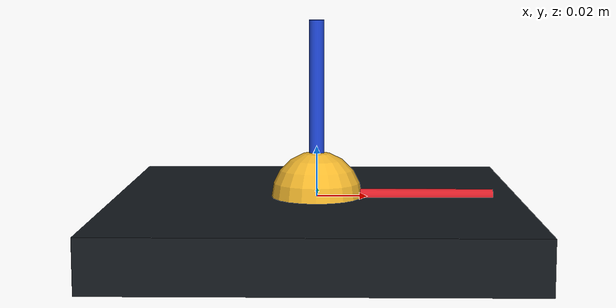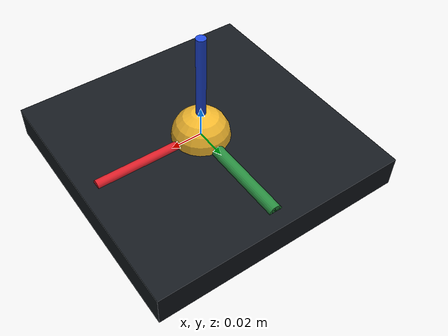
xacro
<?xml version="1.0"?>
<robot xmlns:xacro="http://www.ros.org/wiki/xacro" name="lambda07">
  <xacro:arg name="robot_id" default="lambda07"/>
  <xacro:arg name="use_fake_hardware" default="false"/>
  <xacro:arg name="interface_id" default="-1"/>
  <xacro:arg name="interface_sn" default="-1"/>
  <xacro:arg name="effector_mass" default="-1.0"/>

  <xacro:include filename="$(find lambda07_bringup)/urdf/lambda07.urdf.xacro"/>
  <xacro:lambda07_visual_model robot_id="$(arg robot_id)"/>

  <xacro:include filename="$(find fd_description)/ros2_control/fd.r2c_hardware.xacro"/>
  <xacro:fd_ros2_control
    interface_id="$(arg interface_id)"
    interface_sn="$(arg interface_sn)"
    robot_id="$(arg robot_id)"
    use_fake_hardware="$(arg use_fake_hardware)"
    use_orientation="true"
    orientation_is_actuated="true"
    ignore_orientation_readings="false"
    use_clutch="true"
    emulate_button="true"
    effector_mass="$(arg effector_mass)"
  />
</robot>

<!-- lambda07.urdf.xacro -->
<robot xmlns:xacro="http://www.ros.org/wiki/xacro">
  <xacro:macro name="lambda07_visual_model" params="robot_id:='lambda07'">
    <material name="lambda07_base_mat">
      <color rgba="0.08 0.10 0.12 1.0"/>
    </material>
    <material name="lambda07_axis_x">
      <color rgba="0.85 0.12 0.16 1.0"/>
    </material>
    <material name="lambda07_axis_y">
      <color rgba="0.16 0.55 0.25 1.0"/>
    </material>
    <material name="lambda07_axis_z">
      <color rgba="0.12 0.28 0.85 1.0"/>
    </material>
    <material name="lambda07_ee_mat">
      <color rgba="0.95 0.72 0.18 1.0"/>
    </material>

    <link name="${robot_id}_base">
      <visual>
        <origin xyz="0 0 -0.01" rpy="0 0 0"/>
        <geometry>
          <box size="0.16 0.16 0.02"/>
        </geometry>
        <material name="lambda07_base_mat"/>
      </visual>
    </link>

    <link name="${robot_id}_x_link"/>

    <link name="${robot_id}_y_link"/>

    <link name="${robot_id}_z_link"/>

    <link name="${robot_id}_roll_link"/>
    <link name="${robot_id}_pitch_link"/>
    <link name="${robot_id}_yaw_link"/>

    <link name="${robot_id}_ee">
      <visual>
        <origin xyz="0 0 0" rpy="0 0 0"/>
        <geometry>
          <sphere radius="0.018"/>
        </geometry>
        <material name="lambda07_ee_mat"/>
      </visual>
      <visual>
        <origin xyz="0.035 0 0" rpy="0 1.57079632679 0"/>
        <geometry>
          <cylinder radius="0.003" length="0.07"/>
        </geometry>
        <material name="lambda07_axis_x"/>
      </visual>
      <visual>
        <origin xyz="0 0.035 0" rpy="1.57079632679 0 0"/>
        <geometry>
          <cylinder radius="0.003" length="0.07"/>
        </geometry>
        <material name="lambda07_axis_y"/>
      </visual>
      <visual>
        <origin xyz="0 0 0.035" rpy="0 0 0"/>
        <geometry>
          <cylinder radius="0.003" length="0.07"/>
        </geometry>
        <material name="lambda07_axis_z"/>
      </visual>
    </link>

    <link name="${robot_id}_virtual_clutch_link">
      <visual>
        <origin xyz="0 0.035 0" rpy="1.57079632679 0 0"/>
        <geometry>
          <cylinder radius="0.004" length="0.07"/>
        </geometry>
        <material name="lambda07_axis_y"/>
      </visual>
    </link>

    <joint name="${robot_id}_x" type="prismatic">
      <origin rpy="0 0 0" xyz="0 0 0"/>
      <parent link="${robot_id}_base"/>
      <child link="${robot_id}_x_link"/>
      <axis xyz="1 0 0"/>
      <limit effort="12" velocity="1.0" lower="-2" upper="2"/>
    </joint>
    <joint name="${robot_id}_y" type="prismatic">
      <origin rpy="0 0 0" xyz="0 0 0"/>
      <parent link="${robot_id}_x_link"/>
      <child link="${robot_id}_y_link"/>
      <axis xyz="0 1 0"/>
      <limit effort="12" velocity="1.0" lower="-2" upper="2"/>
    </joint>
    <joint name="${robot_id}_z" type="prismatic">
      <origin rpy="0 0 0" xyz="0 0 0"/>
      <parent link="${robot_id}_y_link"/>
      <child link="${robot_id}_z_link"/>
      <axis xyz="0 0 1"/>
      <limit effort="12" velocity="1.0" lower="-2" upper="2"/>
    </joint>

    <!-- The SDK returns wrist joint angles in physical order: axis 0, axis 1, axis 2.
         On Lambda.07 axis 0 is parallel to world Z, so this visual chain uses Z/Y/X. -->
    <joint name="${robot_id}_roll" type="revolute">
      <origin rpy="0 0 0" xyz="0 0 0"/>
      <parent link="${robot_id}_z_link"/>
      <child link="${robot_id}_roll_link"/>
      <axis xyz="0 0 1"/>
      <limit effort="0.4" velocity="10.0" lower="-3.14159265359" upper="3.14159265359"/>
    </joint>
    <joint name="${robot_id}_pitch" type="revolute">
      <origin rpy="0 0 0" xyz="0 0 0"/>
      <parent link="${robot_id}_roll_link"/>
      <child link="${robot_id}_pitch_link"/>
      <axis xyz="0 1 0"/>
      <limit effort="0.4" velocity="10.0" lower="-3.14159265359" upper="3.14159265359"/>
    </joint>
    <joint name="${robot_id}_yaw" type="revolute">
      <origin rpy="0 0 0" xyz="0 0 0"/>
      <parent link="${robot_id}_pitch_link"/>
      <child link="${robot_id}_yaw_link"/>
      <axis xyz="1 0 0"/>
      <limit effort="0.4" velocity="10.0" lower="-3.14159265359" upper="3.14159265359"/>
    </joint>

    <joint name="${robot_id}_tool" type="fixed">
      <origin rpy="0 0 0" xyz="0 0 0"/>
      <parent link="${robot_id}_yaw_link"/>
      <child link="${robot_id}_ee"/>
    </joint>

    <joint name="${robot_id}_clutch" type="prismatic">
      <origin rpy="0 0 0" xyz="0 0 0"/>
      <parent link="${robot_id}_ee"/>
      <child link="${robot_id}_virtual_clutch_link"/>
      <!-- Virtualized gripper/clutch state follows the handle-frame Y' side axis. -->
      <axis xyz="0 1 0"/>
      <limit effort="12" velocity="1.0" lower="-0.05" upper="0.05"/>
    </joint>
  </xacro:macro>
</robot>
